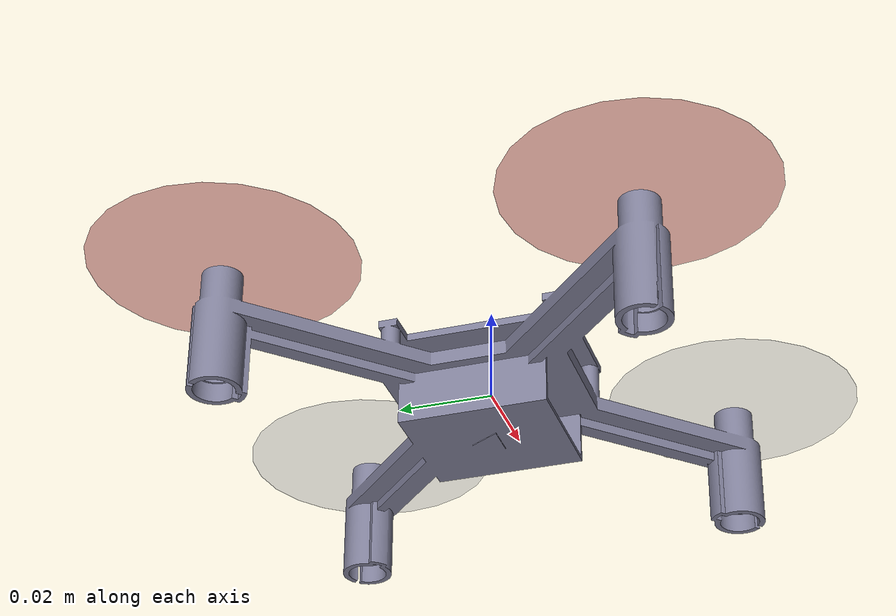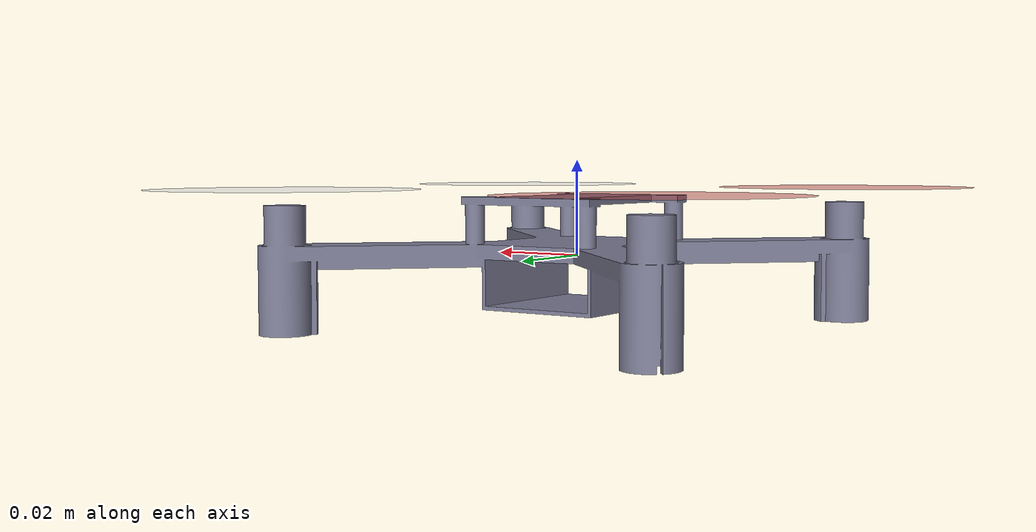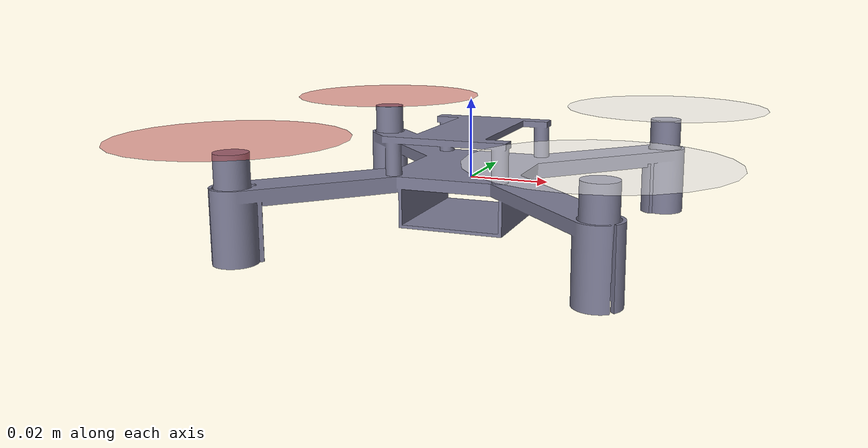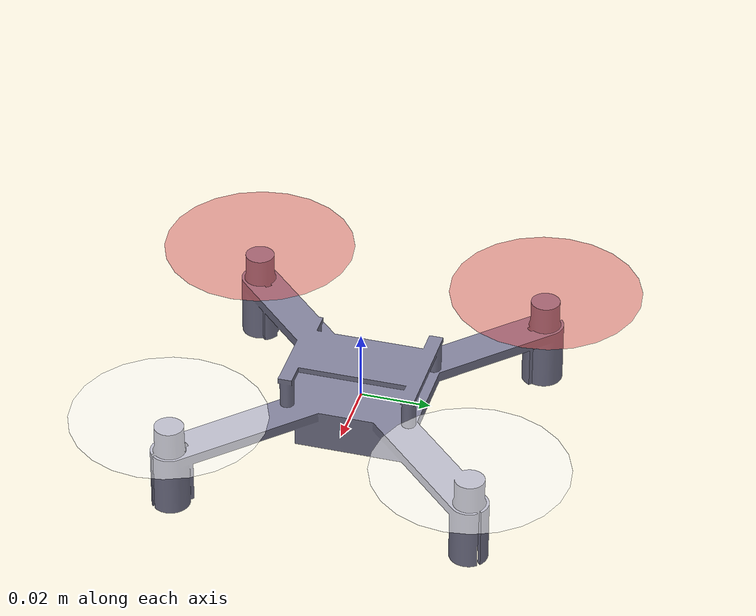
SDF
<?xml version="1.0"?>
<sdf version="1.5">
	<model name="flix">
		<link name="body">
			<inertial>
				<mass>0.065</mass>
				<inertia>
					<ixx>3.55E-5</ixx>
					<iyy>4.23E-5</iyy>
					<izz>7.47E-5</izz>
				</inertia>
			</inertial>
			<collision name="collision">
				<geometry>
					<box>
						<size>0.095 0.095 0.0276</size>
					</box>
				</geometry>
			</collision>
			<sensor name="imu" type="imu">
				<always_on>1</always_on>
				<visualize>1</visualize>
				<update_rate>1000</update_rate>
				<imu>
					<angular_velocity>
						<x>
							<noise type="gaussian">
								<stddev>0.00174533</stddev><!-- 0.1 degrees per second -->
							</noise>
						</x>
						<y>
							<noise type="gaussian">
								<stddev>0.00174533</stddev>
							</noise>
						</y>
						<z>
							<noise type="gaussian">
								<stddev>0.00174533</stddev>
							</noise>
						</z>
					</angular_velocity>
					<linear_acceleration>
						<x>
							<noise type="gaussian">
								<stddev>0.0784</stddev><!-- 8 mg -->
							</noise>
						</x>
						<y>
							<noise type="gaussian">
								<stddev>0.0784</stddev>
							</noise>
						</y>
						<z>
							<noise type="gaussian">
								<stddev>0.0784</stddev>
							</noise>
						</z>
					</linear_acceleration>
				</imu>
			</sensor>
			<visual name="body">
				<geometry>
					<mesh><uri>model://flix/flix.stl</uri></mesh>
				</geometry>
				<material>
					<ambient>0.5 0.5 0.6 1</ambient>
					<diffuse>0.5 0.5 0.6 1</diffuse>
					<specular>0 0 0 1</specular>
					<emissive>0 0 0 1</emissive>
				</material>
			</visual>
			<visual name="prop0"><!-- rear left -->
				<geometry><cylinder><radius>0.0275</radius><length>0</length></cylinder></geometry>
				<pose>-0.04243 0.04243 0.0142 0 0 0</pose>
				<material><ambient>0.8 0.3 0.3 0.5</ambient><diffuse>0.8 0.3 0.3 0.5</diffuse></material>
			</visual>
			<visual name="prop1"><!-- rear right -->
				<geometry><cylinder><radius>0.0275</radius><length>0</length></cylinder></geometry>
				<pose>-0.04243 -0.04243 0.0142 0 0 0</pose>
				<material><ambient>0.8 0.3 0.3 0.5</ambient><diffuse>0.8 0.3 0.3 0.5</diffuse></material>
			</visual>
			<visual name="prop2"><!-- front right -->
				<geometry><cylinder><radius>0.0275</radius><length>0</length></cylinder></geometry>
				<pose>0.04243 -0.04243 0.0142 0 0 0</pose>
				<material><ambient>1 1 1 0.5</ambient><diffuse>1 1 1 0.5</diffuse></material>
			</visual>
			<visual name="prop3"><!-- front left -->
				<geometry><cylinder><radius>0.0275</radius><length>0</length></cylinder></geometry>
				<pose>0.04243 0.04243 0.0142 0 0 0</pose>
				<material><ambient>1 1 1 0.5</ambient><diffuse>1 1 1 0.5</diffuse></material>
			</visual>
		</link>
		<plugin name="flix" filename="libflix.so"/>
	</model>
</sdf>
